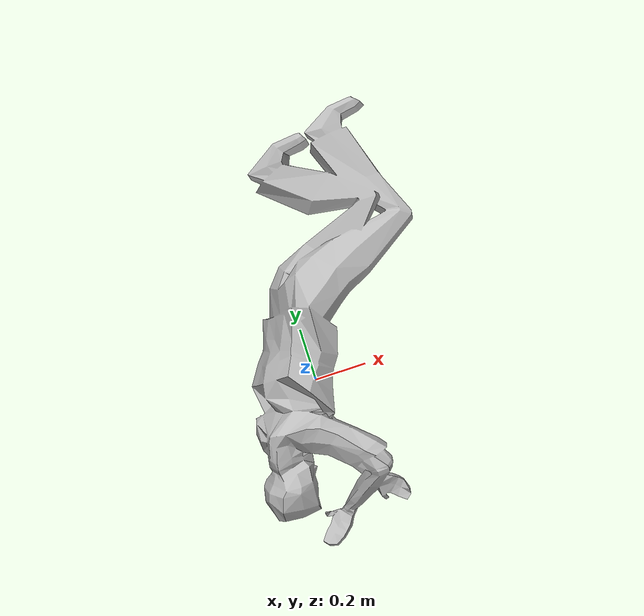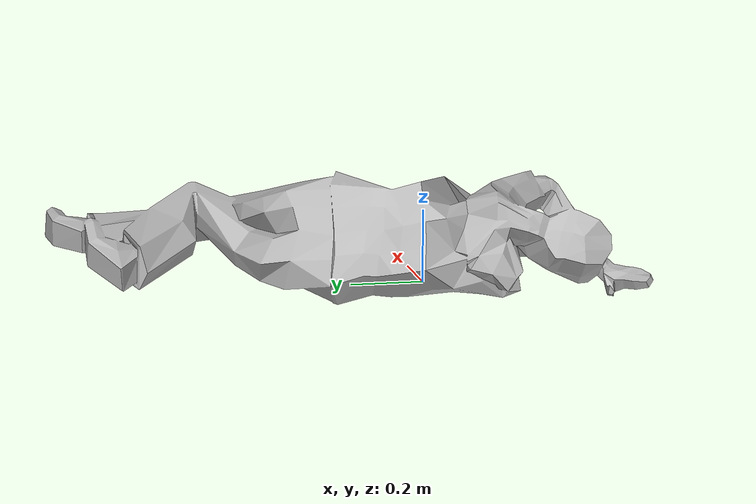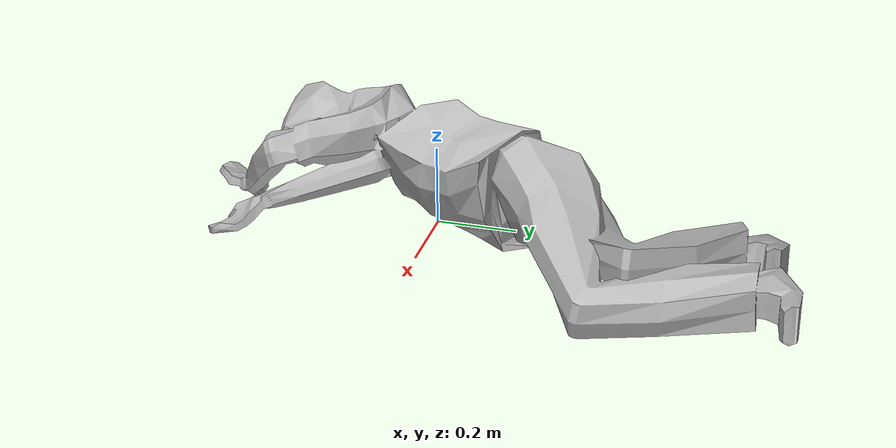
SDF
<sdf version='1.6'>
  <model name='man_resting_side'>
    <link name='base_link'>
      <pose frame=''>0 0 0 0 -0 0</pose>
      <inertial>
        <pose frame=''>0 0 0 0 -0 0</pose>
        <mass>0.01</mass>
        <inertia>
          <ixx>0.001</ixx>
          <ixy>0</ixy>
          <ixz>0</ixz>
          <iyy>0.001</iyy>
          <iyz>0</iyz>
          <izz>0.001</izz>
        </inertia>
      </inertial>
      <collision name='base_link_collision'>
        <pose frame=''>0 0 0 0 -0 0</pose>
        <geometry>
          <mesh>
            <scale>1 1 1</scale>
            <uri>/opt/ros/kinetic/share/cob_gazebo_objects/Media/models/man_resting_side.stl</uri>
          </mesh>
        </geometry>
      </collision>
      <visual name='base_link_visual'>
        <pose frame=''>0 0 0 0 -0 0</pose>
        <geometry>
          <mesh>
            <scale>1 1 1</scale>
            <uri>/opt/ros/kinetic/share/cob_gazebo_objects/Media/models/man_resting_side.dae</uri>
          </mesh>
        </geometry>
      </visual>
    </link>
    <static>1</static>
  </model>
</sdf>
